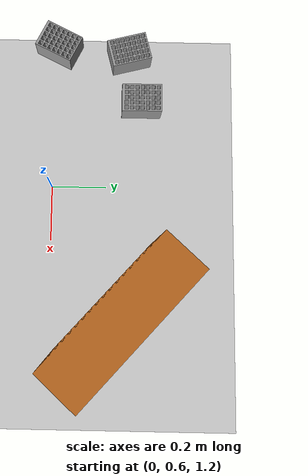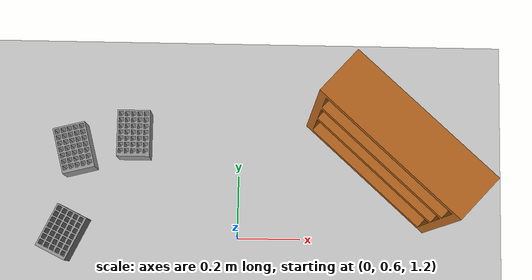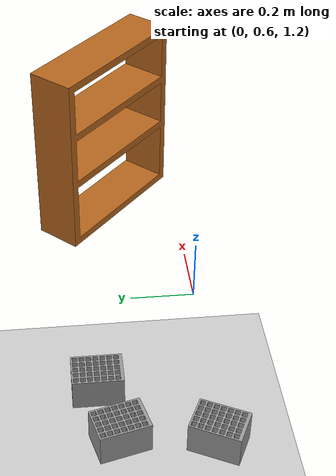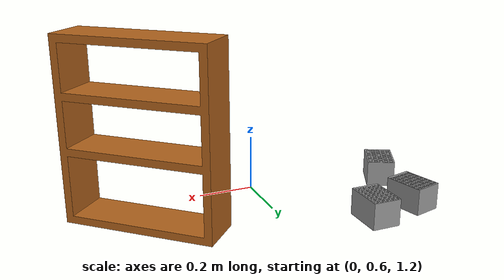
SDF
<sdf version="1.7">
 <world name="default">
  <model name="ground_plane">
   <static>1</static>
   <link name="link">
    <collision name="collision">
     <geometry><plane><normal>0 0 1</normal><size>100 100</size></plane></geometry>
     <surface>
      <contact><collide_bitmask>65535</collide_bitmask></contact>
      <friction><ode><mu>100</mu><mu2>50</mu2></ode></friction>
     </surface>
    </collision>
    <visual name="visual">
     <cast_shadows>0</cast_shadows>
     <geometry><plane><normal>0 0 1</normal><size>100 100</size></plane></geometry>
     <material>
      <script><uri>file://media/materials/scripts/gazebo.material</uri><name>Gazebo/Grey</name></script>
     </material>
    </visual>
   </link>
  </model>
  <light name="sun" type="directional">
   <pose>0 0 10 0 -0 0</pose>
   <diffuse>0.8 0.8 0.8 1</diffuse>
   <specular>0.2 0.2 0.2 1</specular>
   <attenuation>
    <range>1000</range>
    <constant>0.9</constant>
    <linear>0.01</linear>
    <quadratic>0.001</quadratic>
   </attenuation>
   <direction>-0.5 0.1 -0.9</direction>
   <spot><inner_angle>0</inner_angle><outer_angle>0</outer_angle><falloff>0</falloff></spot>
  </light>
  <include><uri>model://Shelf</uri><name>Shelf</name><pose>0.45 0.85 1.55 0 0 0</pose></include>
  <include>
   <uri>model://Vial_Holder</uri>
   <name>Vial_Holder_1</name>
   <pose>-0.56 0.61 1.2 0 0 -0.46</pose>
  </include>
  <include>
   <uri>model://Vial_Holder</uri>
   <name>Vial_Holder_2</name>
   <pose>-0.53 0.88 1.2 0 0 0.25</pose>
  </include>
  <include><uri>model://Vial_Holder</uri><name>Vial_Holder_3</name><pose>-0.34 0.93 1.2 0 0 0</pose></include>
 </world>
</sdf>

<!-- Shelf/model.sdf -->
<sdf version='1.7'>
  <model name='Shelf'>
    <link name='Shelf'>
      <inertial>
        <mass>1</mass>
        <inertia>
          <ixx>0.166667</ixx>
          <ixy>0</ixy>
          <ixz>0</ixz>
          <iyy>0.166667</iyy>
          <iyz>0</iyz>
          <izz>0.166667</izz>
        </inertia>
        <pose>0 0 0 0 -0 0</pose>
      </inertial>
      <pose>0 -0 0 0 0 -0.73812</pose>
      <gravity>1</gravity>
      <self_collide>0</self_collide>
      <kinematic>0</kinematic>
      <enable_wind>0</enable_wind>
      <visual name='visual'>
        <pose>0 0 0 0 -0 0</pose>
        <geometry>
          <mesh>
            <uri>model://Shelf/meshes/shelf.stl</uri>
            <scale>1 1 1</scale>
          </mesh>
        </geometry>
        <material>
          <lighting>1</lighting>
          <script>
            <uri>file://media/materials/scripts/gazebo.material</uri>
            <name>Gazebo/Grey</name>
          </script>
          <shader type='pixel'>
            <normal_map>__default__</normal_map>
          </shader>
          <ambient>0.71 0.396 0.114 0</ambient>
          <diffuse>0.7 0.7 0.7 1</diffuse>
          <specular>0.01 0.01 0.01 1</specular>
          <emissive>0 0 0 1</emissive>
        </material>
        <transparency>0</transparency>
        <cast_shadows>1</cast_shadows>
      </visual>
      <collision name='collision'>
        <laser_retro>0</laser_retro>
        <max_contacts>10</max_contacts>
        <pose>0 0 0 0 -0 0</pose>
        <geometry>
          <mesh>
            <uri>model://Shelf/meshes/shelf.stl</uri>
            <scale>1 1 1</scale>
          </mesh>
        </geometry>
        <surface>
          <friction>
            <ode>
              <mu>1</mu>
              <mu2>1</mu2>
              <fdir1>0 0 0</fdir1>
              <slip1>0</slip1>
              <slip2>0</slip2>
            </ode>
            <torsional>
              <coefficient>1</coefficient>
              <patch_radius>0</patch_radius>
              <surface_radius>0</surface_radius>
              <use_patch_radius>1</use_patch_radius>
              <ode>
                <slip>0</slip>
              </ode>
            </torsional>
          </friction>
          <bounce>
            <restitution_coefficient>0</restitution_coefficient>
            <threshold>1e+06</threshold>
          </bounce>
          <contact>
            <collide_without_contact>0</collide_without_contact>
            <collide_without_contact_bitmask>1</collide_without_contact_bitmask>
            <collide_bitmask>1</collide_bitmask>
            <ode>
              <soft_cfm>0</soft_cfm>
              <soft_erp>0.2</soft_erp>
              <kp>1e+13</kp>
              <kd>1</kd>
              <max_vel>0.01</max_vel>
              <min_depth>0</min_depth>
            </ode>
            <bullet>
              <split_impulse>1</split_impulse>
              <split_impulse_penetration_threshold>-0.01</split_impulse_penetration_threshold>
              <soft_cfm>0</soft_cfm>
              <soft_erp>0.2</soft_erp>
              <kp>1e+13</kp>
              <kd>1</kd>
            </bullet>
          </contact>
        </surface>
      </collision>
    </link>
    <static>0</static>
    <allow_auto_disable>1</allow_auto_disable>
  </model>
</sdf>

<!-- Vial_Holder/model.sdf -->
<sdf version='1.7'>
  <model name='Vial_Holder'>
    <link name='Vial_Holder'>
      <inertial>
        <mass>1</mass>
        <inertia>
          <ixx>0.166667</ixx>
          <ixy>0</ixy>
          <ixz>0</ixz>
          <iyy>0.166667</iyy>
          <iyz>0</iyz>
          <izz>0.166667</izz>
        </inertia>
        <pose>0 0 0 0 -0 0</pose>
      </inertial>
      <pose>-0 0 0 0 -0 0</pose>
      <gravity>1</gravity>
      <self_collide>0</self_collide>
      <kinematic>0</kinematic>
      <enable_wind>0</enable_wind>
      <visual name='visual'>
        <pose>0 0 0 0 -0 0</pose>
        <geometry>
          <mesh>
            <uri>model://Vial_Holder/meshes/vial_holder.stl</uri>
            <scale>1 1 1</scale>
          </mesh>
        </geometry>
        <material>
          <lighting>1</lighting>
          <script>
            <uri>file://media/materials/scripts/gazebo.material</uri>
            <name>Gazebo/Grey</name>
          </script>
          <shader type='pixel'>
            <normal_map>__default__</normal_map>
          </shader>
          <ambient>1 1 1 0</ambient>
          <diffuse>0.7 0.7 0.7 1</diffuse>
          <specular>0.01 0.01 0.01 1</specular>
          <emissive>0 0 0 1</emissive>
        </material>
        <transparency>0</transparency>
        <cast_shadows>1</cast_shadows>
      </visual>
      <collision name='collision'>
        <laser_retro>0</laser_retro>
        <max_contacts>10</max_contacts>
        <pose>0 0 0 0 -0 0</pose>
        <geometry>
          <mesh>
            <uri>model://Vial_Holder/meshes/vial_holder.stl</uri>
            <scale>1 1 1</scale>
          </mesh>
        </geometry>
        <surface>
          <friction>
            <ode>
              <mu>1</mu>
              <mu2>1</mu2>
              <fdir1>0 0 0</fdir1>
              <slip1>0</slip1>
              <slip2>0</slip2>
            </ode>
            <torsional>
              <coefficient>1</coefficient>
              <patch_radius>0</patch_radius>
              <surface_radius>0</surface_radius>
              <use_patch_radius>1</use_patch_radius>
              <ode>
                <slip>0</slip>
              </ode>
            </torsional>
          </friction>
          <bounce>
            <restitution_coefficient>0</restitution_coefficient>
            <threshold>1e+06</threshold>
          </bounce>
          <contact>
            <collide_without_contact>0</collide_without_contact>
            <collide_without_contact_bitmask>1</collide_without_contact_bitmask>
            <collide_bitmask>1</collide_bitmask>
            <ode>
              <soft_cfm>0</soft_cfm>
              <soft_erp>0.2</soft_erp>
              <kp>1e+13</kp>
              <kd>1</kd>
              <max_vel>0.01</max_vel>
              <min_depth>0</min_depth>
            </ode>
            <bullet>
              <split_impulse>1</split_impulse>
              <split_impulse_penetration_threshold>-0.01</split_impulse_penetration_threshold>
              <soft_cfm>0</soft_cfm>
              <soft_erp>0.2</soft_erp>
              <kp>1e+13</kp>
              <kd>1</kd>
            </bullet>
          </contact>
        </surface>
      </collision>
    </link>
    <static>0</static>
    <allow_auto_disable>1</allow_auto_disable>
  </model>
</sdf>
